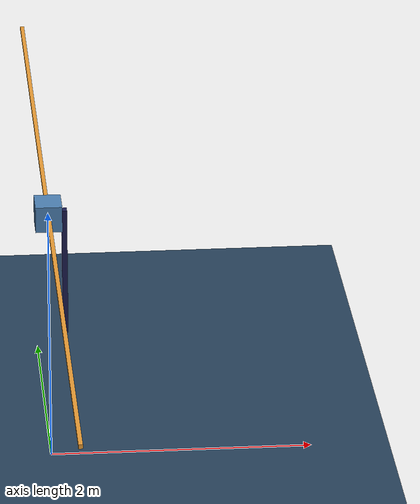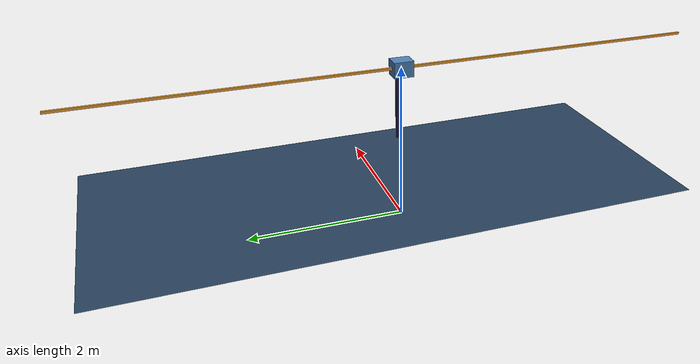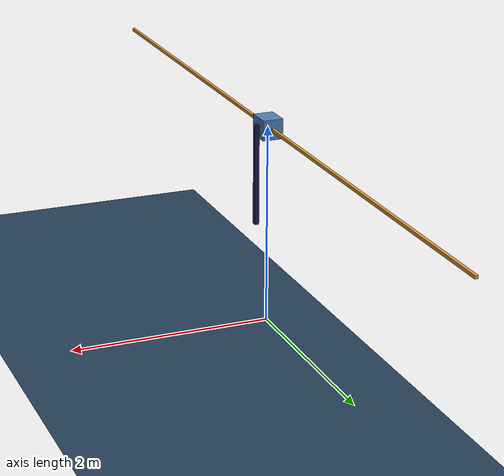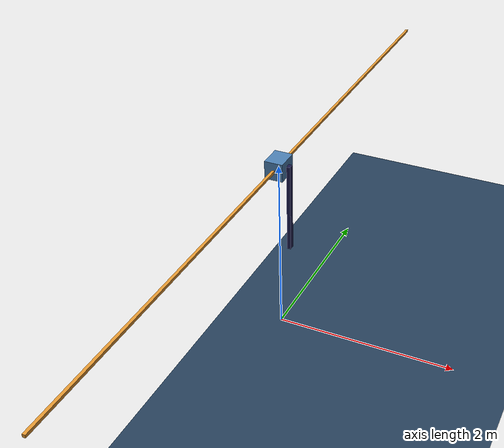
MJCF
<mujoco model="cartpole">
  <compiler angle="radian" coordinate="local" inertiafromgeom="true"/>

  <asset>
    <texture name="grid" type="2d" builtin="checker" rgb1=".1 .2 .3" rgb2=".2 .3 .4" width="300" height="300"/>
    <material name="grid" texture="grid" texrepeat="8 8" reflectance=".2"/>
    <material name="slider_mat" rgba="0.9 0.6 0.2 1"/>
    <material name="cart_mat" rgba="0.3 0.5 0.7 1"/>
    <material name="pole_mat" rgba="0.1 0.1 0.3 1"/>
  </asset>

  <worldbody>
    <light name="light" pos="0 0 6"/>
    <camera name="fixed" pos="0 -4 1" zaxis="0 -1 0"/>
    <camera name="lookatcart" mode="targetbody" target="cart" pos="0 -2 2"/>
    <geom name="floor" pos="0 0 -.05" size="4 4 .2" type="plane" material="grid"/>
    <body name="slider" pos="0 0 2">
      <geom name="slider_geom" type="box" size="0.015 4 0.015" material="slider_mat"/>
      <body name="cart" pos="0 0 0">
        <joint name="slider_to_cart" type="slide" axis="0 1 0" range="-4 4" limited="true" solreflimit=".08 1" damping="0.01"/>
        <geom name="cart_geom" type="box" size="0.1 0.125 0.1" material="cart_mat" mass="1"/>
        <body name="pole" pos="0.12 0 0" euler="3.14159 0 0">
          <joint name="cart_to_pole" type="hinge" axis="1 0 0" damping="0.01"/>
          <geom name="pole_geom" type="box" size="0.02 0.03 0.5" pos="0 0 0.47" material="pole_mat" mass="1."/>
        </body>
      </body>
    </body>
  </worldbody>

  <contact>
    <exclude body1="slider" body2="cart"/>
    <exclude body1="cart" body2="pole"/>
    <exclude body1="pole" body2="slider"/>
  </contact>

  <actuator>
    <motor name="slide" joint="slider_to_cart" gear="10" ctrllimited="true" ctrlrange="-1 1"/>
  </actuator>
</mujoco>
